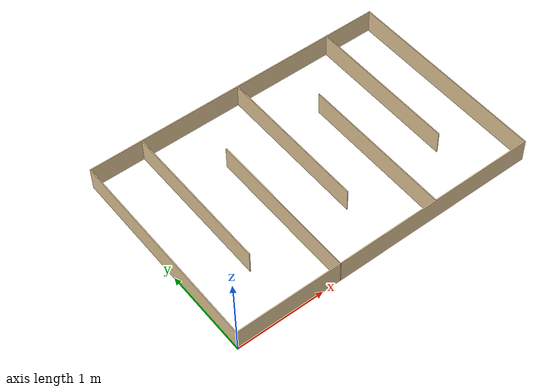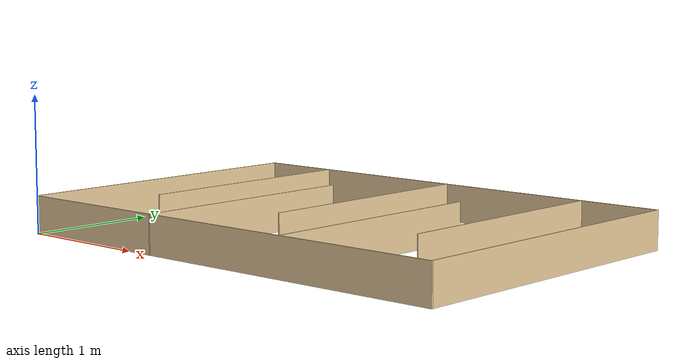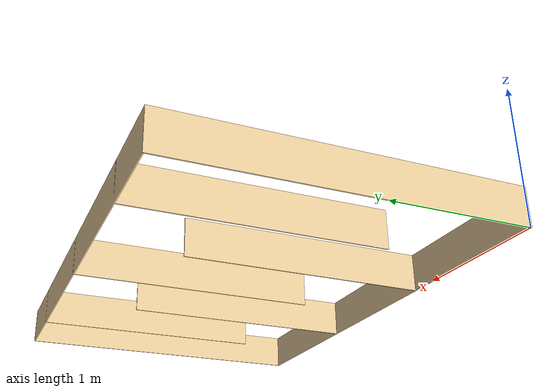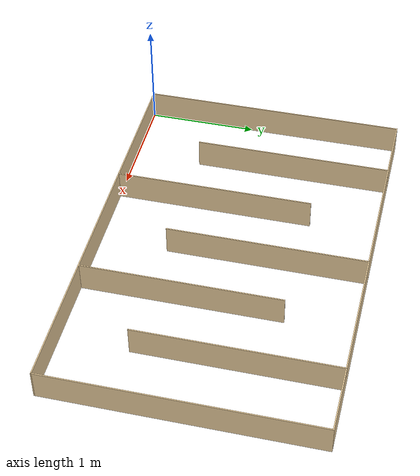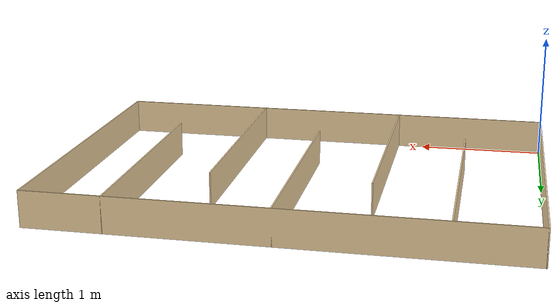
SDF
<?xml version='1.0'?>
<sdf version='1.6'>
  <model name='labyrinth_pronze-1.0'>
    <pose frame=''>1.81 1.21 0 0 -0 0</pose>
    <link name='Wall_10'>
      <collision name='Wall_10_Collision'>
        <geometry>
          <box>
            <size>2.43 0.01 0.28</size>
          </box>
        </geometry>
        <pose frame=''>0 0 0.14 0 -0 0</pose>
      </collision>
      <visual name='Wall_10_Visual'>
        <pose frame=''>0 0 0.14 0 -0 0</pose>
        <geometry>
          <box>
            <size>2.43 0.01 0.28</size>
          </box>
        </geometry>
        <material>
          <script>
            <uri>file://media/materials/scripts/gazebo.material</uri>
            <name>Gazebo/Grey</name>
          </script>
          <ambient>0.921569 0.807843 0.615686 1</ambient>
        </material>
        <meta>
          <layer>0</layer>
        </meta>
      </visual>
      <pose frame=''>1.81 0 0 0 0 -1.5708</pose>
    </link>
    <link name='Wall_11'>
      <collision name='Wall_11_Collision'>
        <geometry>
          <box>
            <size>3.63 0.01 0.28</size>
          </box>
        </geometry>
        <pose frame=''>0 0 0.14 0 -0 0</pose>
      </collision>
      <visual name='Wall_11_Visual'>
        <pose frame=''>0 0 0.14 0 -0 0</pose>
        <geometry>
          <box>
            <size>3.63 0.01 0.28</size>
          </box>
        </geometry>
        <material>
          <script>
            <uri>file://media/materials/scripts/gazebo.material</uri>
            <name>Gazebo/Grey</name>
          </script>
          <ambient>0.921569 0.807843 0.615686 1</ambient>
        </material>
        <meta>
          <layer>0</layer>
        </meta>
      </visual>
      <pose frame=''>0 -1.21 0 0 -0 3.14159</pose>
    </link>
    <link name='Wall_13'>
      <collision name='Wall_13_Collision'>
        <geometry>
          <box>
            <size>1.81 0.01 0.28</size>
          </box>
        </geometry>
        <pose frame=''>0 0 0.14 0 -0 0</pose>
      </collision>
      <visual name='Wall_13_Visual'>
        <pose frame=''>0 0 0.14 0 -0 0</pose>
        <geometry>
          <box>
            <size>1.81 0.01 0.28</size>
          </box>
        </geometry>
        <material>
          <script>
            <uri>file://media/materials/scripts/gazebo.material</uri>
            <name>Gazebo/Grey</name>
          </script>
          <ambient>0.921569 0.807843 0.615686 1</ambient>
        </material>
        <meta>
          <layer>0</layer>
        </meta>
      </visual>
      <pose frame=''>-1.2 0.31 0 0 0 -1.5708</pose>
    </link>
    <link name='Wall_16'>
      <collision name='Wall_16_Collision'>
        <geometry>
          <box>
            <size>1.81 0.01 0.28</size>
          </box>
        </geometry>
        <pose frame=''>0 0 0.14 0 -0 0</pose>
      </collision>
      <visual name='Wall_16_Visual'>
        <pose frame=''>0 0 0.14 0 -0 0</pose>
        <geometry>
          <box>
            <size>1.81 0.01 0.28</size>
          </box>
        </geometry>
        <material>
          <script>
            <uri>file://media/materials/scripts/gazebo.material</uri>
            <name>Gazebo/Grey</name>
          </script>
          <ambient>0.921569 0.807843 0.615686 1</ambient>
        </material>
        <meta>
          <layer>0</layer>
        </meta>
      </visual>
      <pose frame=''>-0.6 -0.31 0 0 -0 1.5708</pose>
    </link>
    <link name='Wall_19'>
      <collision name='Wall_19_Collision'>
        <geometry>
          <box>
            <size>1.81 0.01 0.28</size>
          </box>
        </geometry>
        <pose frame=''>0 0 0.14 0 -0 0</pose>
      </collision>
      <visual name='Wall_19_Visual'>
        <pose frame=''>0 0 0.14 0 -0 0</pose>
        <geometry>
          <box>
            <size>1.81 0.01 0.28</size>
          </box>
        </geometry>
        <material>
          <script>
            <uri>file://media/materials/scripts/gazebo.material</uri>
            <name>Gazebo/Grey</name>
          </script>
          <ambient>0.921569 0.807843 0.615686 1</ambient>
        </material>
        <meta>
          <layer>0</layer>
        </meta>
      </visual>
      <pose frame=''>0 0.31 0 0 0 -1.5708</pose>
    </link>
    <link name='Wall_21'>
      <collision name='Wall_21_Collision'>
        <geometry>
          <box>
            <size>1.81 0.01 0.28</size>
          </box>
        </geometry>
        <pose frame=''>0 0 0.14 0 -0 0</pose>
      </collision>
      <visual name='Wall_21_Visual'>
        <pose frame=''>0 0 0.14 0 -0 0</pose>
        <geometry>
          <box>
            <size>1.81 0.01 0.28</size>
          </box>
        </geometry>
        <material>
          <script>
            <uri>file://media/materials/scripts/gazebo.material</uri>
            <name>Gazebo/Grey</name>
          </script>
          <ambient>0.921569 0.807843 0.615686 1</ambient>
        </material>
        <meta>
          <layer>0</layer>
        </meta>
      </visual>
      <pose frame=''>0.6 -0.31 0 0 -0 1.5708</pose>
    </link>
    <link name='Wall_23'>
      <collision name='Wall_23_Collision'>
        <geometry>
          <box>
            <size>1.81 0.01 0.28</size>
          </box>
        </geometry>
        <pose frame=''>0 0 0.14 0 -0 0</pose>
      </collision>
      <visual name='Wall_23_Visual'>
        <pose frame=''>0 0 0.14 0 -0 0</pose>
        <geometry>
          <box>
            <size>1.81 0.01 0.28</size>
          </box>
        </geometry>
        <material>
          <script>
            <uri>file://media/materials/scripts/gazebo.material</uri>
            <name>Gazebo/Grey</name>
          </script>
          <ambient>0.921569 0.807843 0.615686 1</ambient>
        </material>
        <meta>
          <layer>0</layer>
        </meta>
      </visual>
      <pose frame=''>1.2 0.31 0 0 0 -1.5708</pose>
    </link>
    <link name='Wall_8'>
      <collision name='Wall_8_Collision'>
        <geometry>
          <box>
            <size>2.43 0.01 0.28</size>
          </box>
        </geometry>
        <pose frame=''>0 0 0.14 0 -0 0</pose>
      </collision>
      <visual name='Wall_8_Visual'>
        <pose frame=''>0 0 0.14 0 -0 0</pose>
        <geometry>
          <box>
            <size>2.43 0.01 0.28</size>
          </box>
        </geometry>
        <material>
          <script>
            <uri>file://media/materials/scripts/gazebo.material</uri>
            <name>Gazebo/Grey</name>
          </script>
          <ambient>0.921569 0.807843 0.615686 1</ambient>
        </material>
        <meta>
          <layer>0</layer>
        </meta>
      </visual>
      <pose frame=''>-1.81 0 0 0 -0 1.5708</pose>
    </link>
    <link name='Wall_9'>
      <collision name='Wall_9_Collision'>
        <geometry>
          <box>
            <size>3.63 0.01 0.28</size>
          </box>
        </geometry>
        <pose frame=''>0 0 0.14 0 -0 0</pose>
      </collision>
      <visual name='Wall_9_Visual'>
        <pose frame=''>0 0 0.14 0 -0 0</pose>
        <geometry>
          <box>
            <size>3.63 0.01 0.28</size>
          </box>
        </geometry>
        <material>
          <script>
            <uri>file://media/materials/scripts/gazebo.material</uri>
            <name>Gazebo/Grey</name>
          </script>
          <ambient>0.921569 0.807843 0.615686 1</ambient>
        </material>
        <meta>
          <layer>0</layer>
        </meta>
      </visual>
      <pose frame=''>0 1.21 0 0 -0 0</pose>
    </link>
    <static>1</static>
  </model>
</sdf>
